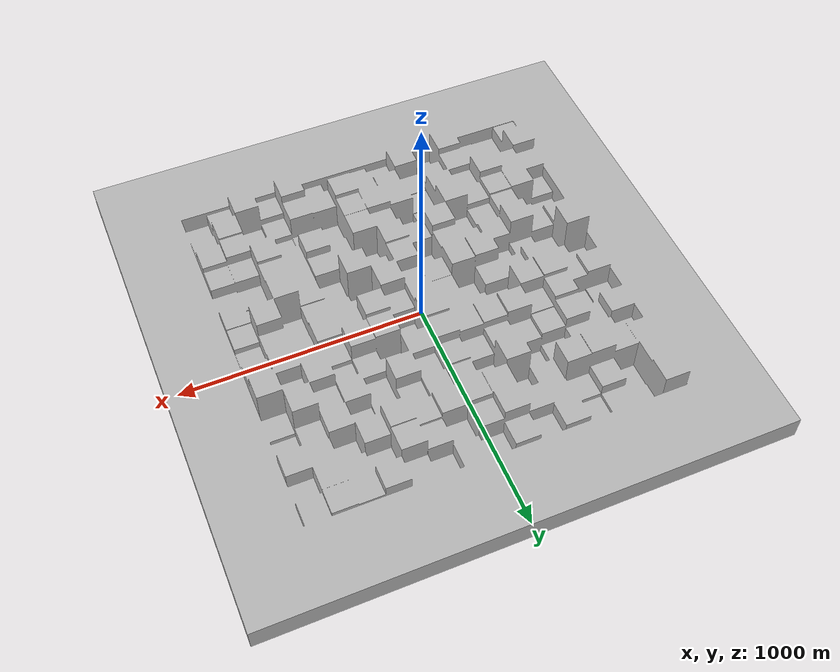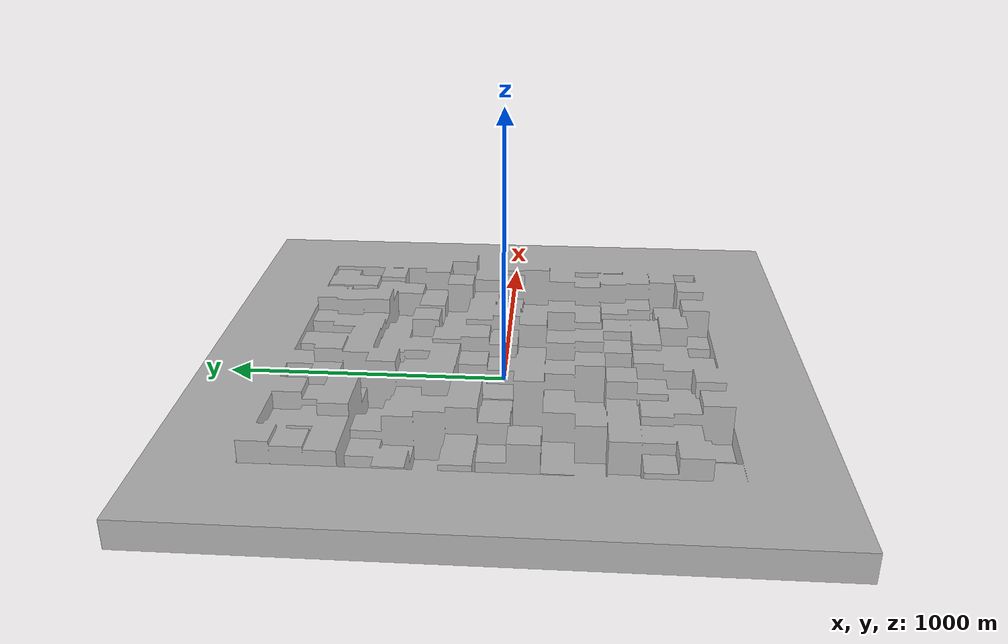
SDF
<?xml version='1.0'?>
<sdf version="1.4">
	<model name="terrain">
	 <pose>0 0 5 0 0 0</pose>

	  <link name="mesh_link">

	    <inertial name="mesh_inertial">
	      <mass>10.0</mass>
	       <inertia> <!-- interias are tricky to compute -->
			  <!-- http://answers.gazebosim.org/question/4372/the-inertia-matrix-explained/ -->
			  <ixx>0.083</ixx>       <!-- for a box: ixx = 0.083 * mass * (y*y + z*z) -->
			  <ixy>0.0</ixy>         <!-- for a box: ixy = 0 -->
			  <ixz>0.0</ixz>         <!-- for a box: ixz = 0 -->
			  <iyy>0.083</iyy>       <!-- for a box: iyy = 0.083 * mass * (x*x + z*z) -->
			  <iyz>0.0</iyz>         <!-- for a box: iyz = 0 -->
			  <izz>0.083</izz>       <!-- for a box: izz = 0.083 * mass * (x*x + y*y) -->
			</inertia>
	    </inertial>

	    <visual name="mesh_visual">
	      <geometry>
	        <mesh><uri>file://rough_terrain.dae</uri></mesh>
	      </geometry>
	    </visual>
	    <collision name="mesh_collision">
	      <geometry>
	        <mesh><uri>file://rough_terrain.dae</uri></mesh>
	      </geometry>
	    </collision>
	  </link>
	</model>
</sdf>
